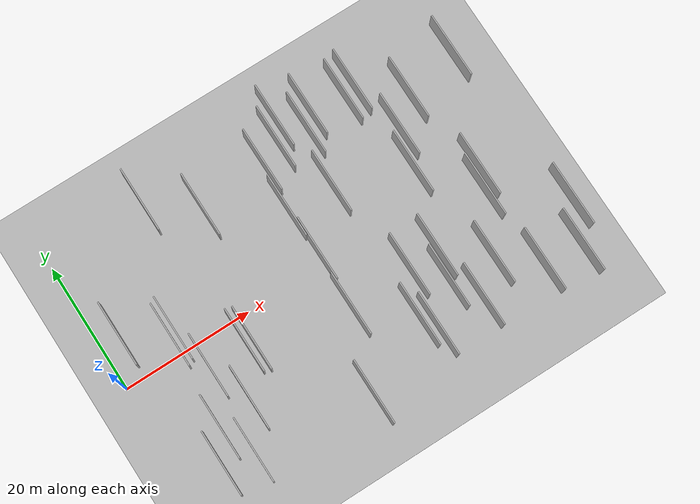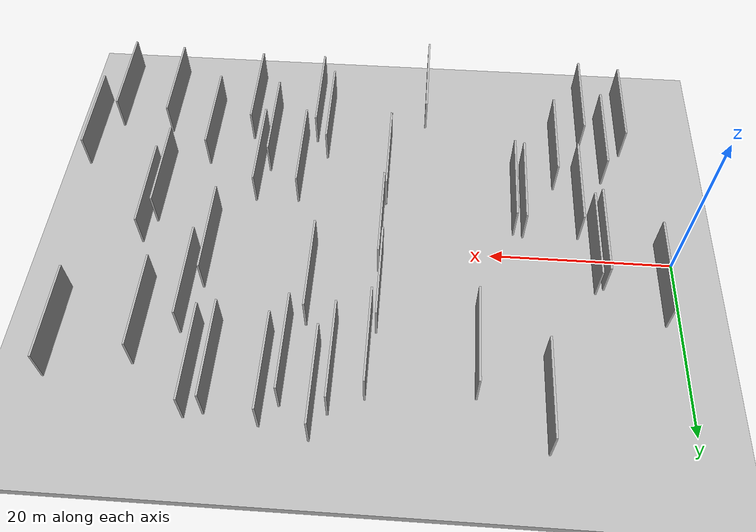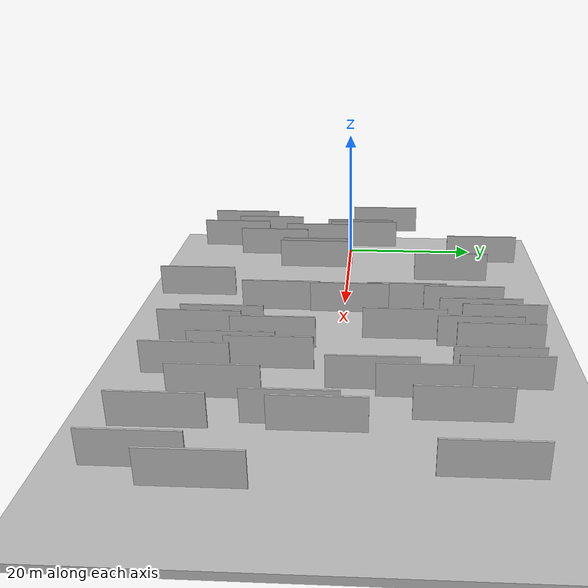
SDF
<?xml version="1.0" encoding="utf-8"?>

<sdf version="1.6">

   <world name="default">

      <gui fullscreen="0">

         <camera name="user_camera">

            <pose>-15 0 4.57585 0 0 0</pose>

            <view_controller>orbit</view_controller>

         </camera>

      </gui>

      <scene>

         <sky>

           <clouds>

             <speed>12</speed>

           </clouds>

         </sky>

         <ambient>0.4 0.4 0.4 1</ambient>

         <background>0.7 0.7 0.7 1</background>

         <shadows>1</shadows>

      </scene>

      <gravity>0 0 -9.8066</gravity>

      <magnetic_field>6e-06 2.3e-05 -4.2e-05</magnetic_field>

      <physics default="0" name="default_physics" type="ode">

         <ode>

            <solver>

               <type>quick</type>

               <iters>10</iters>

               <sor>1.0</sor>

               <use_dynamic_moi_rescaling>0</use_dynamic_moi_rescaling>

            </solver>

            <constraints>

               <cfm>0</cfm>

               <erp>0.2</erp>

               <contact_max_correcting_vel>100</contact_max_correcting_vel>

               <contact_surface_layer>0.001</contact_surface_layer>

            </constraints>

         </ode>

         <max_step_size>0.004</max_step_size>

         <real_time_factor>1</real_time_factor>

         <real_time_update_rate>250</real_time_update_rate>

      </physics>

      <light name="sun" type="directional">

         <cast_shadows>1</cast_shadows>

         <pose>0 0 10 0 0 0</pose>

         <diffuse>0.8 0.8 0.8 1</diffuse>

         <specular>0.2 0.2 0.2 1</specular>

         <attenuation>

            <range>1000</range>

            <constant>0.9</constant>

            <linear>0.01</linear>

            <quadratic>0.001</quadratic>

         </attenuation>

         <direction>-0.5 0.1 -0.9</direction>

      </light>

      <include>

         <name>ground_plane_1</name>

         <uri>model://HANNAS_ground_plane</uri>

         <pose>0 0 0  0 0 0</pose>

      </include>

      <include>

         <name>ground_plane_2</name>

         <uri>model://HANNAS_ground_plane</uri>

         <pose>100 0 0  0 0 0</pose>

      </include>

      <model name="HANNAS_wall_1">

         <static>1</static>

         <pose frame="">35.6187 17.3053 5.0 0.000000 0.000000 1.570796</pose>

         <link name="link">

            <pose frame="">0 0 2.00 0 0 0</pose>

            <collision name="collision">

               <geometry>

                  <box>

                     <size>10.00 0.2 4.00</size>

                  </box>

               </geometry>

               <max_contacts>10</max_contacts>

               <surface>

                  <contact>

                     <ode/>

                  </contact>

                  <bounce/>

                  <friction>

                     <torsional>

                        <ode/>

                     </torsional>

                     <ode/>

                  </friction>

               </surface>

            </collision>

            <visual name="visual">

               <cast_shadows>0</cast_shadows>

               <geometry>

                  <box>

                     <size>10.00 0.2 4.00</size>

                  </box>

               </geometry>

               <material>

                  <script>

                     <uri>model://HANNAS_wall/materials/scripts</uri>

                     <uri>model://HANNAS_wall/materials/textures</uri>

                     <name>vrc/HANNAS_wall</name>

                  </script>

               </material>

            </visual>

            <self_collide>0</self_collide>

            <enable_wind>0</enable_wind>

            <kinematic>0</kinematic>

         </link>

      </model>

      <model name="HANNAS_wall_2">

         <static>1</static>

         <pose frame="">38.6878 7.9935 5.0 0.000000 0.000000 1.570796</pose>

         <link name="link">

            <pose frame="">0 0 2.00 0 0 0</pose>

            <collision name="collision">

               <geometry>

                  <box>

                     <size>10.00 0.2 4.00</size>

                  </box>

               </geometry>

               <max_contacts>10</max_contacts>

               <surface>

                  <contact>

                     <ode/>

                  </contact>

                  <bounce/>

                  <friction>

                     <torsional>

                        <ode/>

                     </torsional>

                     <ode/>

                  </friction>

               </surface>

            </collision>

            <visual name="visual">

               <cast_shadows>0</cast_shadows>

               <geometry>

                  <box>

                     <size>10.00 0.2 4.00</size>

                  </box>

               </geometry>

               <material>

                  <script>

                     <uri>model://HANNAS_wall/materials/scripts</uri>

                     <uri>model://HANNAS_wall/materials/textures</uri>

                     <name>vrc/HANNAS_wall</name>

                  </script>

               </material>

            </visual>

            <self_collide>0</self_collide>

            <enable_wind>0</enable_wind>

            <kinematic>0</kinematic>

         </link>

      </model>

      <model name="HANNAS_wall_3">

         <static>1</static>

         <pose frame="">48.8552 18.4777 5.0 0.000000 0.000000 1.570796</pose>

         <link name="link">

            <pose frame="">0 0 2.00 0 0 0</pose>

            <collision name="collision">

               <geometry>

                  <box>

                     <size>10.00 0.2 4.00</size>

                  </box>

               </geometry>

               <max_contacts>10</max_contacts>

               <surface>

                  <contact>

                     <ode/>

                  </contact>

                  <bounce/>

                  <friction>

                     <torsional>

                        <ode/>

                     </torsional>

                     <ode/>

                  </friction>

               </surface>

            </collision>

            <visual name="visual">

               <cast_shadows>0</cast_shadows>

               <geometry>

                  <box>

                     <size>10.00 0.2 4.00</size>

                  </box>

               </geometry>

               <material>

                  <script>

                     <uri>model://HANNAS_wall/materials/scripts</uri>

                     <uri>model://HANNAS_wall/materials/textures</uri>

                     <name>vrc/HANNAS_wall</name>

                  </script>

               </material>

            </visual>

            <self_collide>0</self_collide>

            <enable_wind>0</enable_wind>

            <kinematic>0</kinematic>

         </link>

      </model>

      <model name="HANNAS_wall_4">

         <static>1</static>

         <pose frame="">50.8744 9.6806 5.0 0.000000 0.000000 1.570796</pose>

         <link name="link">

            <pose frame="">0 0 2.00 0 0 0</pose>

            <collision name="collision">

               <geometry>

                  <box>

                     <size>10.00 0.2 4.00</size>

                  </box>

               </geometry>

               <max_contacts>10</max_contacts>

               <surface>

                  <contact>

                     <ode/>

                  </contact>

                  <bounce/>

                  <friction>

                     <torsional>

                        <ode/>

                     </torsional>

                     <ode/>

                  </friction>

               </surface>

            </collision>

            <visual name="visual">

               <cast_shadows>0</cast_shadows>

               <geometry>

                  <box>

                     <size>10.00 0.2 4.00</size>

                  </box>

               </geometry>

               <material>

                  <script>

                     <uri>model://HANNAS_wall/materials/scripts</uri>

                     <uri>model://HANNAS_wall/materials/textures</uri>

                     <name>vrc/HANNAS_wall</name>

                  </script>

               </material>

            </visual>

            <self_collide>0</self_collide>

            <enable_wind>0</enable_wind>

            <kinematic>0</kinematic>

         </link>

      </model>

      <model name="HANNAS_wall_5">

         <static>1</static>

         <pose frame="">21.9102 14.8072 5.0 0.000000 0.000000 1.570796</pose>

         <link name="link">

            <pose frame="">0 0 2.00 0 0 0</pose>

            <collision name="collision">

               <geometry>

                  <box>

                     <size>10.00 0.2 4.00</size>

                  </box>

               </geometry>

               <max_contacts>10</max_contacts>

               <surface>

                  <contact>

                     <ode/>

                  </contact>

                  <bounce/>

                  <friction>

                     <torsional>

                        <ode/>

                     </torsional>

                     <ode/>

                  </friction>

               </surface>

            </collision>

            <visual name="visual">

               <cast_shadows>0</cast_shadows>

               <geometry>

                  <box>

                     <size>10.00 0.2 4.00</size>

                  </box>

               </geometry>

               <material>

                  <script>

                     <uri>model://HANNAS_wall/materials/scripts</uri>

                     <uri>model://HANNAS_wall/materials/textures</uri>

                     <name>vrc/HANNAS_wall</name>

                  </script>

               </material>

            </visual>

            <self_collide>0</self_collide>

            <enable_wind>0</enable_wind>

            <kinematic>0</kinematic>

         </link>

      </model>

      <model name="HANNAS_wall_6">

         <static>1</static>

         <pose frame="">11.2211 -4.3443 5.0 0.000000 0.000000 1.570796</pose>

         <link name="link">

            <pose frame="">0 0 2.00 0 0 0</pose>

            <collision name="collision">

               <geometry>

                  <box>

                     <size>10.00 0.2 4.00</size>

                  </box>

               </geometry>

               <max_contacts>10</max_contacts>

               <surface>

                  <contact>

                     <ode/>

                  </contact>

                  <bounce/>

                  <friction>

                     <torsional>

                        <ode/>

                     </torsional>

                     <ode/>

                  </friction>

               </surface>

            </collision>

            <visual name="visual">

               <cast_shadows>0</cast_shadows>

               <geometry>

                  <box>

                     <size>10.00 0.2 4.00</size>

                  </box>

               </geometry>

               <material>

                  <script>

                     <uri>model://HANNAS_wall/materials/scripts</uri>

                     <uri>model://HANNAS_wall/materials/textures</uri>

                     <name>vrc/HANNAS_wall</name>

                  </script>

               </material>

            </visual>

            <self_collide>0</self_collide>

            <enable_wind>0</enable_wind>

            <kinematic>0</kinematic>

         </link>

      </model>

      <model name="HANNAS_wall_7">

         <static>1</static>

         <pose frame="">54.7584 13.3678 5.0 0.000000 0.000000 1.570796</pose>

         <link name="link">

            <pose frame="">0 0 2.00 0 0 0</pose>

            <collision name="collision">

               <geometry>

                  <box>

                     <size>10.00 0.2 4.00</size>

                  </box>

               </geometry>

               <max_contacts>10</max_contacts>

               <surface>

                  <contact>

                     <ode/>

                  </contact>

                  <bounce/>

                  <friction>

                     <torsional>

                        <ode/>

                     </torsional>

                     <ode/>

                  </friction>

               </surface>

            </collision>

            <visual name="visual">

               <cast_shadows>0</cast_shadows>

               <geometry>

                  <box>

                     <size>10.00 0.2 4.00</size>

                  </box>

               </geometry>

               <material>

                  <script>

                     <uri>model://HANNAS_wall/materials/scripts</uri>

                     <uri>model://HANNAS_wall/materials/textures</uri>

                     <name>vrc/HANNAS_wall</name>

                  </script>

               </material>

            </visual>

            <self_collide>0</self_collide>

            <enable_wind>0</enable_wind>

            <kinematic>0</kinematic>

         </link>

      </model>

      <model name="HANNAS_wall_8">

         <static>1</static>

         <pose frame="">37.0614 19.9305 5.0 0.000000 0.000000 1.570796</pose>

         <link name="link">

            <pose frame="">0 0 2.00 0 0 0</pose>

            <collision name="collision">

               <geometry>

                  <box>

                     <size>10.00 0.2 4.00</size>

                  </box>

               </geometry>

               <max_contacts>10</max_contacts>

               <surface>

                  <contact>

                     <ode/>

                  </contact>

                  <bounce/>

                  <friction>

                     <torsional>

                        <ode/>

                     </torsional>

                     <ode/>

                  </friction>

               </surface>

            </collision>

            <visual name="visual">

               <cast_shadows>0</cast_shadows>

               <geometry>

                  <box>

                     <size>10.00 0.2 4.00</size>

                  </box>

               </geometry>

               <material>

                  <script>

                     <uri>model://HANNAS_wall/materials/scripts</uri>

                     <uri>model://HANNAS_wall/materials/textures</uri>

                     <name>vrc/HANNAS_wall</name>

                  </script>

               </material>

            </visual>

            <self_collide>0</self_collide>

            <enable_wind>0</enable_wind>

            <kinematic>0</kinematic>

         </link>

      </model>

      <model name="HANNAS_wall_9">

         <static>1</static>

         <pose frame="">47.5059 -16.1841 5.0 0.000000 0.000000 1.570796</pose>

         <link name="link">

            <pose frame="">0 0 2.00 0 0 0</pose>

            <collision name="collision">

               <geometry>

                  <box>

                     <size>10.00 0.2 4.00</size>

                  </box>

               </geometry>

               <max_contacts>10</max_contacts>

               <surface>

                  <contact>

                     <ode/>

                  </contact>

                  <bounce/>

                  <friction>

                     <torsional>

                        <ode/>

                     </torsional>

                     <ode/>

                  </friction>

               </surface>

            </collision>

            <visual name="visual">

               <cast_shadows>0</cast_shadows>

               <geometry>

                  <box>

                     <size>10.00 0.2 4.00</size>

                  </box>

               </geometry>

               <material>

                  <script>

                     <uri>model://HANNAS_wall/materials/scripts</uri>

                     <uri>model://HANNAS_wall/materials/textures</uri>

                     <name>vrc/HANNAS_wall</name>

                  </script>

               </material>

            </visual>

            <self_collide>0</self_collide>

            <enable_wind>0</enable_wind>

            <kinematic>0</kinematic>

         </link>

      </model>

      <model name="HANNAS_wall_10">

         <static>1</static>

         <pose frame="">49.5563 4.3010 5.0 0.000000 0.000000 1.570796</pose>

         <link name="link">

            <pose frame="">0 0 2.00 0 0 0</pose>

            <collision name="collision">

               <geometry>

                  <box>

                     <size>10.00 0.2 4.00</size>

                  </box>

               </geometry>

               <max_contacts>10</max_contacts>

               <surface>

                  <contact>

                     <ode/>

                  </contact>

                  <bounce/>

                  <friction>

                     <torsional>

                        <ode/>

                     </torsional>

                     <ode/>

                  </friction>

               </surface>

            </collision>

            <visual name="visual">

               <cast_shadows>0</cast_shadows>

               <geometry>

                  <box>

                     <size>10.00 0.2 4.00</size>

                  </box>

               </geometry>

               <material>

                  <script>

                     <uri>model://HANNAS_wall/materials/scripts</uri>

                     <uri>model://HANNAS_wall/materials/textures</uri>

                     <name>vrc/HANNAS_wall</name>

                  </script>

               </material>

            </visual>

            <self_collide>0</self_collide>

            <enable_wind>0</enable_wind>

            <kinematic>0</kinematic>

         </link>

      </model>

      <model name="HANNAS_wall_11">

         <static>1</static>

         <pose frame="">27.9047 -19.2298 5.0 0.000000 0.000000 1.570796</pose>

         <link name="link">

            <pose frame="">0 0 2.00 0 0 0</pose>

            <collision name="collision">

               <geometry>

                  <box>

                     <size>10.00 0.2 4.00</size>

                  </box>

               </geometry>

               <max_contacts>10</max_contacts>

               <surface>

                  <contact>

                     <ode/>

                  </contact>

                  <bounce/>

                  <friction>

                     <torsional>

                        <ode/>

                     </torsional>

                     <ode/>

                  </friction>

               </surface>

            </collision>

            <visual name="visual">

               <cast_shadows>0</cast_shadows>

               <geometry>

                  <box>

                     <size>10.00 0.2 4.00</size>

                  </box>

               </geometry>

               <material>

                  <script>

                     <uri>model://HANNAS_wall/materials/scripts</uri>

                     <uri>model://HANNAS_wall/materials/textures</uri>

                     <name>vrc/HANNAS_wall</name>

                  </script>

               </material>

            </visual>

            <self_collide>0</self_collide>

            <enable_wind>0</enable_wind>

            <kinematic>0</kinematic>

         </link>

      </model>

      <model name="HANNAS_wall_12">

         <static>1</static>

         <pose frame="">65.4013 -11.1770 5.0 0.000000 0.000000 1.570796</pose>

         <link name="link">

            <pose frame="">0 0 2.00 0 0 0</pose>

            <collision name="collision">

               <geometry>

                  <box>

                     <size>10.00 0.2 4.00</size>

                  </box>

               </geometry>

               <max_contacts>10</max_contacts>

               <surface>

                  <contact>

                     <ode/>

                  </contact>

                  <bounce/>

                  <friction>

                     <torsional>

                        <ode/>

                     </torsional>

                     <ode/>

                  </friction>

               </surface>

            </collision>

            <visual name="visual">

               <cast_shadows>0</cast_shadows>

               <geometry>

                  <box>

                     <size>10.00 0.2 4.00</size>

                  </box>

               </geometry>

               <material>

                  <script>

                     <uri>model://HANNAS_wall/materials/scripts</uri>

                     <uri>model://HANNAS_wall/materials/textures</uri>

                     <name>vrc/HANNAS_wall</name>

                  </script>

               </material>

            </visual>

            <self_collide>0</self_collide>

            <enable_wind>0</enable_wind>

            <kinematic>0</kinematic>

         </link>

      </model>

      <model name="HANNAS_wall_13">

         <static>1</static>

         <pose frame="">9.0521 1.8651 5.0 0.000000 0.000000 1.570796</pose>

         <link name="link">

            <pose frame="">0 0 2.00 0 0 0</pose>

            <collision name="collision">

               <geometry>

                  <box>

                     <size>10.00 0.2 4.00</size>

                  </box>

               </geometry>

               <max_contacts>10</max_contacts>

               <surface>

                  <contact>

                     <ode/>

                  </contact>

                  <bounce/>

                  <friction>

                     <torsional>

                        <ode/>

                     </torsional>

                     <ode/>

                  </friction>

               </surface>

            </collision>

            <visual name="visual">

               <cast_shadows>0</cast_shadows>

               <geometry>

                  <box>

                     <size>10.00 0.2 4.00</size>

                  </box>

               </geometry>

               <material>

                  <script>

                     <uri>model://HANNAS_wall/materials/scripts</uri>

                     <uri>model://HANNAS_wall/materials/textures</uri>

                     <name>vrc/HANNAS_wall</name>

                  </script>

               </material>

            </visual>

            <self_collide>0</self_collide>

            <enable_wind>0</enable_wind>

            <kinematic>0</kinematic>

         </link>

      </model>

      <model name="HANNAS_wall_14">

         <static>1</static>

         <pose frame="">32.0175 1.1703 5.0 0.000000 0.000000 1.570796</pose>

         <link name="link">

            <pose frame="">0 0 2.00 0 0 0</pose>

            <collision name="collision">

               <geometry>

                  <box>

                     <size>10.00 0.2 4.00</size>

                  </box>

               </geometry>

               <max_contacts>10</max_contacts>

               <surface>

                  <contact>

                     <ode/>

                  </contact>

                  <bounce/>

                  <friction>

                     <torsional>

                        <ode/>

                     </torsional>

                     <ode/>

                  </friction>

               </surface>

            </collision>

            <visual name="visual">

               <cast_shadows>0</cast_shadows>

               <geometry>

                  <box>

                     <size>10.00 0.2 4.00</size>

                  </box>

               </geometry>

               <material>

                  <script>

                     <uri>model://HANNAS_wall/materials/scripts</uri>

                     <uri>model://HANNAS_wall/materials/textures</uri>

                     <name>vrc/HANNAS_wall</name>

                  </script>

               </material>

            </visual>

            <self_collide>0</self_collide>

            <enable_wind>0</enable_wind>

            <kinematic>0</kinematic>

         </link>

      </model>

      <model name="HANNAS_wall_15">

         <static>1</static>

         <pose frame="">62.9998 -17.1964 5.0 0.000000 0.000000 1.570796</pose>

         <link name="link">

            <pose frame="">0 0 2.00 0 0 0</pose>

            <collision name="collision">

               <geometry>

                  <box>

                     <size>10.00 0.2 4.00</size>

                  </box>

               </geometry>

               <max_contacts>10</max_contacts>

               <surface>

                  <contact>

                     <ode/>

                  </contact>

                  <bounce/>

                  <friction>

                     <torsional>

                        <ode/>

                     </torsional>

                     <ode/>

                  </friction>

               </surface>

            </collision>

            <visual name="visual">

               <cast_shadows>0</cast_shadows>

               <geometry>

                  <box>

                     <size>10.00 0.2 4.00</size>

                  </box>

               </geometry>

               <material>

                  <script>

                     <uri>model://HANNAS_wall/materials/scripts</uri>

                     <uri>model://HANNAS_wall/materials/textures</uri>

                     <name>vrc/HANNAS_wall</name>

                  </script>

               </material>

            </visual>

            <self_collide>0</self_collide>

            <enable_wind>0</enable_wind>

            <kinematic>0</kinematic>

         </link>

      </model>

      <model name="HANNAS_wall_16">

         <static>1</static>

         <pose frame="">8.1679 -12.1139 5.0 0.000000 0.000000 1.570796</pose>

         <link name="link">

            <pose frame="">0 0 2.00 0 0 0</pose>

            <collision name="collision">

               <geometry>

                  <box>

                     <size>10.00 0.2 4.00</size>

                  </box>

               </geometry>

               <max_contacts>10</max_contacts>

               <surface>

                  <contact>

                     <ode/>

                  </contact>

                  <bounce/>

                  <friction>

                     <torsional>

                        <ode/>

                     </torsional>

                     <ode/>

                  </friction>

               </surface>

            </collision>

            <visual name="visual">

               <cast_shadows>0</cast_shadows>

               <geometry>

                  <box>

                     <size>10.00 0.2 4.00</size>

                  </box>

               </geometry>

               <material>

                  <script>

                     <uri>model://HANNAS_wall/materials/scripts</uri>

                     <uri>model://HANNAS_wall/materials/textures</uri>

                     <name>vrc/HANNAS_wall</name>

                  </script>

               </material>

            </visual>

            <self_collide>0</self_collide>

            <enable_wind>0</enable_wind>

            <kinematic>0</kinematic>

         </link>

      </model>

      <model name="HANNAS_wall_17">

         <static>1</static>

         <pose frame="">45.9120 -7.1869 5.0 0.000000 0.000000 1.570796</pose>

         <link name="link">

            <pose frame="">0 0 2.00 0 0 0</pose>

            <collision name="collision">

               <geometry>

                  <box>

                     <size>10.00 0.2 4.00</size>

                  </box>

               </geometry>

               <max_contacts>10</max_contacts>

               <surface>

                  <contact>

                     <ode/>

                  </contact>

                  <bounce/>

                  <friction>

                     <torsional>

                        <ode/>

                     </torsional>

                     <ode/>

                  </friction>

               </surface>

            </collision>

            <visual name="visual">

               <cast_shadows>0</cast_shadows>

               <geometry>

                  <box>

                     <size>10.00 0.2 4.00</size>

                  </box>

               </geometry>

               <material>

                  <script>

                     <uri>model://HANNAS_wall/materials/scripts</uri>

                     <uri>model://HANNAS_wall/materials/textures</uri>

                     <name>vrc/HANNAS_wall</name>

                  </script>

               </material>

            </visual>

            <self_collide>0</self_collide>

            <enable_wind>0</enable_wind>

            <kinematic>0</kinematic>

         </link>

      </model>

      <model name="HANNAS_wall_18">

         <static>1</static>

         <pose frame="">9.9027 2.4186 5.0 0.000000 0.000000 1.570796</pose>

         <link name="link">

            <pose frame="">0 0 2.00 0 0 0</pose>

            <collision name="collision">

               <geometry>

                  <box>

                     <size>10.00 0.2 4.00</size>

                  </box>

               </geometry>

               <max_contacts>10</max_contacts>

               <surface>

                  <contact>

                     <ode/>

                  </contact>

                  <bounce/>

                  <friction>

                     <torsional>

                        <ode/>

                     </torsional>

                     <ode/>

                  </friction>

               </surface>

            </collision>

            <visual name="visual">

               <cast_shadows>0</cast_shadows>

               <geometry>

                  <box>

                     <size>10.00 0.2 4.00</size>

                  </box>

               </geometry>

               <material>

                  <script>

                     <uri>model://HANNAS_wall/materials/scripts</uri>

                     <uri>model://HANNAS_wall/materials/textures</uri>

                     <name>vrc/HANNAS_wall</name>

                  </script>

               </material>

            </visual>

            <self_collide>0</self_collide>

            <enable_wind>0</enable_wind>

            <kinematic>0</kinematic>

         </link>

      </model>

      <model name="HANNAS_wall_19">

         <static>1</static>

         <pose frame="">31.7313 8.4021 5.0 0.000000 0.000000 1.570796</pose>

         <link name="link">

            <pose frame="">0 0 2.00 0 0 0</pose>

            <collision name="collision">

               <geometry>

                  <box>

                     <size>10.00 0.2 4.00</size>

                  </box>

               </geometry>

               <max_contacts>10</max_contacts>

               <surface>

                  <contact>

                     <ode/>

                  </contact>

                  <bounce/>

                  <friction>

                     <torsional>

                        <ode/>

                     </torsional>

                     <ode/>

                  </friction>

               </surface>

            </collision>

            <visual name="visual">

               <cast_shadows>0</cast_shadows>

               <geometry>

                  <box>

                     <size>10.00 0.2 4.00</size>

                  </box>

               </geometry>

               <material>

                  <script>

                     <uri>model://HANNAS_wall/materials/scripts</uri>

                     <uri>model://HANNAS_wall/materials/textures</uri>

                     <name>vrc/HANNAS_wall</name>

                  </script>

               </material>

            </visual>

            <self_collide>0</self_collide>

            <enable_wind>0</enable_wind>

            <kinematic>0</kinematic>

         </link>

      </model>

      <model name="HANNAS_wall_20">

         <static>1</static>

         <pose frame="">47.0536 17.9925 5.0 0.000000 0.000000 1.570796</pose>

         <link name="link">

            <pose frame="">0 0 2.00 0 0 0</pose>

            <collision name="collision">

               <geometry>

                  <box>

                     <size>10.00 0.2 4.00</size>

                  </box>

               </geometry>

               <max_contacts>10</max_contacts>

               <surface>

                  <contact>

                     <ode/>

                  </contact>

                  <bounce/>

                  <friction>

                     <torsional>

                        <ode/>

                     </torsional>

                     <ode/>

                  </friction>

               </surface>

            </collision>

            <visual name="visual">

               <cast_shadows>0</cast_shadows>

               <geometry>

                  <box>

                     <size>10.00 0.2 4.00</size>

                  </box>

               </geometry>

               <material>

                  <script>

                     <uri>model://HANNAS_wall/materials/scripts</uri>

                     <uri>model://HANNAS_wall/materials/textures</uri>

                     <name>vrc/HANNAS_wall</name>

                  </script>

               </material>

            </visual>

            <self_collide>0</self_collide>

            <enable_wind>0</enable_wind>

            <kinematic>0</kinematic>

         </link>

      </model>

      <model name="HANNAS_wall_21">

         <static>1</static>

         <pose frame="">40.1856 -16.2109 5.0 0.000000 0.000000 1.570796</pose>

         <link name="link">

            <pose frame="">0 0 2.00 0 0 0</pose>

            <collision name="collision">

               <geometry>

                  <box>

                     <size>10.00 0.2 4.00</size>

                  </box>

               </geometry>

               <max_contacts>10</max_contacts>

               <surface>

                  <contact>

                     <ode/>

                  </contact>

                  <bounce/>

                  <friction>

                     <torsional>

                        <ode/>

                     </torsional>

                     <ode/>

                  </friction>

               </surface>

            </collision>

            <visual name="visual">

               <cast_shadows>0</cast_shadows>

               <geometry>

                  <box>

                     <size>10.00 0.2 4.00</size>

                  </box>

               </geometry>

               <material>

                  <script>

                     <uri>model://HANNAS_wall/materials/scripts</uri>

                     <uri>model://HANNAS_wall/materials/textures</uri>

                     <name>vrc/HANNAS_wall</name>

                  </script>

               </material>

            </visual>

            <self_collide>0</self_collide>

            <enable_wind>0</enable_wind>

            <kinematic>0</kinematic>

         </link>

      </model>

      <model name="HANNAS_wall_22">

         <static>1</static>

         <pose frame="">31.7617 -7.6001 5.0 0.000000 0.000000 1.570796</pose>

         <link name="link">

            <pose frame="">0 0 2.00 0 0 0</pose>

            <collision name="collision">

               <geometry>

                  <box>

                     <size>10.00 0.2 4.00</size>

                  </box>

               </geometry>

               <max_contacts>10</max_contacts>

               <surface>

                  <contact>

                     <ode/>

                  </contact>

                  <bounce/>

                  <friction>

                     <torsional>

                        <ode/>

                     </torsional>

                     <ode/>

                  </friction>

               </surface>

            </collision>

            <visual name="visual">

               <cast_shadows>0</cast_shadows>

               <geometry>

                  <box>

                     <size>10.00 0.2 4.00</size>

                  </box>

               </geometry>

               <material>

                  <script>

                     <uri>model://HANNAS_wall/materials/scripts</uri>

                     <uri>model://HANNAS_wall/materials/textures</uri>

                     <name>vrc/HANNAS_wall</name>

                  </script>

               </material>

            </visual>

            <self_collide>0</self_collide>

            <enable_wind>0</enable_wind>

            <kinematic>0</kinematic>

         </link>

      </model>

      <model name="HANNAS_wall_23">

         <static>1</static>

         <pose frame="">51.8885 -12.1097 5.0 0.000000 0.000000 1.570796</pose>

         <link name="link">

            <pose frame="">0 0 2.00 0 0 0</pose>

            <collision name="collision">

               <geometry>

                  <box>

                     <size>10.00 0.2 4.00</size>

                  </box>

               </geometry>

               <max_contacts>10</max_contacts>

               <surface>

                  <contact>

                     <ode/>

                  </contact>

                  <bounce/>

                  <friction>

                     <torsional>

                        <ode/>

                     </torsional>

                     <ode/>

                  </friction>

               </surface>

            </collision>

            <visual name="visual">

               <cast_shadows>0</cast_shadows>

               <geometry>

                  <box>

                     <size>10.00 0.2 4.00</size>

                  </box>

               </geometry>

               <material>

                  <script>

                     <uri>model://HANNAS_wall/materials/scripts</uri>

                     <uri>model://HANNAS_wall/materials/textures</uri>

                     <name>vrc/HANNAS_wall</name>

                  </script>

               </material>

            </visual>

            <self_collide>0</self_collide>

            <enable_wind>0</enable_wind>

            <kinematic>0</kinematic>

         </link>

      </model>

      <model name="HANNAS_wall_24">

         <static>1</static>

         <pose frame="">13.5260 -10.9125 5.0 0.000000 0.000000 1.570796</pose>

         <link name="link">

            <pose frame="">0 0 2.00 0 0 0</pose>

            <collision name="collision">

               <geometry>

                  <box>

                     <size>10.00 0.2 4.00</size>

                  </box>

               </geometry>

               <max_contacts>10</max_contacts>

               <surface>

                  <contact>

                     <ode/>

                  </contact>

                  <bounce/>

                  <friction>

                     <torsional>

                        <ode/>

                     </torsional>

                     <ode/>

                  </friction>

               </surface>

            </collision>

            <visual name="visual">

               <cast_shadows>0</cast_shadows>

               <geometry>

                  <box>

                     <size>10.00 0.2 4.00</size>

                  </box>

               </geometry>

               <material>

                  <script>

                     <uri>model://HANNAS_wall/materials/scripts</uri>

                     <uri>model://HANNAS_wall/materials/textures</uri>

                     <name>vrc/HANNAS_wall</name>

                  </script>

               </material>

            </visual>

            <self_collide>0</self_collide>

            <enable_wind>0</enable_wind>

            <kinematic>0</kinematic>

         </link>

      </model>

      <model name="HANNAS_wall_25">

         <static>1</static>

         <pose frame="">17.0636 -4.1122 5.0 0.000000 0.000000 1.570796</pose>

         <link name="link">

            <pose frame="">0 0 2.00 0 0 0</pose>

            <collision name="collision">

               <geometry>

                  <box>

                     <size>10.00 0.2 4.00</size>

                  </box>

               </geometry>

               <max_contacts>10</max_contacts>

               <surface>

                  <contact>

                     <ode/>

                  </contact>

                  <bounce/>

                  <friction>

                     <torsional>

                        <ode/>

                     </torsional>

                     <ode/>

                  </friction>

               </surface>

            </collision>

            <visual name="visual">

               <cast_shadows>0</cast_shadows>

               <geometry>

                  <box>

                     <size>10.00 0.2 4.00</size>

                  </box>

               </geometry>

               <material>

                  <script>

                     <uri>model://HANNAS_wall/materials/scripts</uri>

                     <uri>model://HANNAS_wall/materials/textures</uri>

                     <name>vrc/HANNAS_wall</name>

                  </script>

               </material>

            </visual>

            <self_collide>0</self_collide>

            <enable_wind>0</enable_wind>

            <kinematic>0</kinematic>

         </link>

      </model>

      <model name="HANNAS_wall_26">

         <static>1</static>

         <pose frame="">3.2221 5.7646 5.0 0.000000 0.000000 1.570796</pose>

         <link name="link">

            <pose frame="">0 0 2.00 0 0 0</pose>

            <collision name="collision">

               <geometry>

                  <box>

                     <size>10.00 0.2 4.00</size>

                  </box>

               </geometry>

               <max_contacts>10</max_contacts>

               <surface>

                  <contact>

                     <ode/>

                  </contact>

                  <bounce/>

                  <friction>

                     <torsional>

                        <ode/>

                     </torsional>

                     <ode/>

                  </friction>

               </surface>

            </collision>

            <visual name="visual">

               <cast_shadows>0</cast_shadows>

               <geometry>

                  <box>

                     <size>10.00 0.2 4.00</size>

                  </box>

               </geometry>

               <material>

                  <script>

                     <uri>model://HANNAS_wall/materials/scripts</uri>

                     <uri>model://HANNAS_wall/materials/textures</uri>

                     <name>vrc/HANNAS_wall</name>

                  </script>

               </material>

            </visual>

            <self_collide>0</self_collide>

            <enable_wind>0</enable_wind>

            <kinematic>0</kinematic>

         </link>

      </model>

      <model name="HANNAS_wall_27">

         <static>1</static>

         <pose frame="">40.1759 16.7730 5.0 0.000000 0.000000 1.570796</pose>

         <link name="link">

            <pose frame="">0 0 2.00 0 0 0</pose>

            <collision name="collision">

               <geometry>

                  <box>

                     <size>10.00 0.2 4.00</size>

                  </box>

               </geometry>

               <max_contacts>10</max_contacts>

               <surface>

                  <contact>

                     <ode/>

                  </contact>

                  <bounce/>

                  <friction>

                     <torsional>

                        <ode/>

                     </torsional>

                     <ode/>

                  </friction>

               </surface>

            </collision>

            <visual name="visual">

               <cast_shadows>0</cast_shadows>

               <geometry>

                  <box>

                     <size>10.00 0.2 4.00</size>

                  </box>

               </geometry>

               <material>

                  <script>

                     <uri>model://HANNAS_wall/materials/scripts</uri>

                     <uri>model://HANNAS_wall/materials/textures</uri>

                     <name>vrc/HANNAS_wall</name>

                  </script>

               </material>

            </visual>

            <self_collide>0</self_collide>

            <enable_wind>0</enable_wind>

            <kinematic>0</kinematic>

         </link>

      </model>

      <model name="HANNAS_wall_28">

         <static>1</static>

         <pose frame="">38.7814 -13.7784 5.0 0.000000 0.000000 1.570796</pose>

         <link name="link">

            <pose frame="">0 0 2.00 0 0 0</pose>

            <collision name="collision">

               <geometry>

                  <box>

                     <size>10.00 0.2 4.00</size>

                  </box>

               </geometry>

               <max_contacts>10</max_contacts>

               <surface>

                  <contact>

                     <ode/>

                  </contact>

                  <bounce/>

                  <friction>

                     <torsional>

                        <ode/>

                     </torsional>

                     <ode/>

                  </friction>

               </surface>

            </collision>

            <visual name="visual">

               <cast_shadows>0</cast_shadows>

               <geometry>

                  <box>

                     <size>10.00 0.2 4.00</size>

                  </box>

               </geometry>

               <material>

                  <script>

                     <uri>model://HANNAS_wall/materials/scripts</uri>

                     <uri>model://HANNAS_wall/materials/textures</uri>

                     <name>vrc/HANNAS_wall</name>

                  </script>

               </material>

            </visual>

            <self_collide>0</self_collide>

            <enable_wind>0</enable_wind>

            <kinematic>0</kinematic>

         </link>

      </model>

      <model name="HANNAS_wall_29">

         <static>1</static>

         <pose frame="">15.3241 19.7978 5.0 0.000000 0.000000 1.570796</pose>

         <link name="link">

            <pose frame="">0 0 2.00 0 0 0</pose>

            <collision name="collision">

               <geometry>

                  <box>

                     <size>10.00 0.2 4.00</size>

                  </box>

               </geometry>

               <max_contacts>10</max_contacts>

               <surface>

                  <contact>

                     <ode/>

                  </contact>

                  <bounce/>

                  <friction>

                     <torsional>

                        <ode/>

                     </torsional>

                     <ode/>

                  </friction>

               </surface>

            </collision>

            <visual name="visual">

               <cast_shadows>0</cast_shadows>

               <geometry>

                  <box>

                     <size>10.00 0.2 4.00</size>

                  </box>

               </geometry>

               <material>

                  <script>

                     <uri>model://HANNAS_wall/materials/scripts</uri>

                     <uri>model://HANNAS_wall/materials/textures</uri>

                     <name>vrc/HANNAS_wall</name>

                  </script>

               </material>

            </visual>

            <self_collide>0</self_collide>

            <enable_wind>0</enable_wind>

            <kinematic>0</kinematic>

         </link>

      </model>

      <model name="HANNAS_wall_30">

         <static>1</static>

         <pose frame="">56.0486 -3.6493 5.0 0.000000 0.000000 1.570796</pose>

         <link name="link">

            <pose frame="">0 0 2.00 0 0 0</pose>

            <collision name="collision">

               <geometry>

                  <box>

                     <size>10.00 0.2 4.00</size>

                  </box>

               </geometry>

               <max_contacts>10</max_contacts>

               <surface>

                  <contact>

                     <ode/>

                  </contact>

                  <bounce/>

                  <friction>

                     <torsional>

                        <ode/>

                     </torsional>

                     <ode/>

                  </friction>

               </surface>

            </collision>

            <visual name="visual">

               <cast_shadows>0</cast_shadows>

               <geometry>

                  <box>

                     <size>10.00 0.2 4.00</size>

                  </box>

               </geometry>

               <material>

                  <script>

                     <uri>model://HANNAS_wall/materials/scripts</uri>

                     <uri>model://HANNAS_wall/materials/textures</uri>

                     <name>vrc/HANNAS_wall</name>

                  </script>

               </material>

            </visual>

            <self_collide>0</self_collide>

            <enable_wind>0</enable_wind>

            <kinematic>0</kinematic>

         </link>

      </model>

      <model name="HANNAS_wall_31">

         <static>1</static>

         <pose frame="">18.0532 -4.3979 5.0 0.000000 0.000000 1.570796</pose>

         <link name="link">

            <pose frame="">0 0 2.00 0 0 0</pose>

            <collision name="collision">

               <geometry>

                  <box>

                     <size>10.00 0.2 4.00</size>

                  </box>

               </geometry>

               <max_contacts>10</max_contacts>

               <surface>

                  <contact>

                     <ode/>

                  </contact>

                  <bounce/>

                  <friction>

                     <torsional>

                        <ode/>

                     </torsional>

                     <ode/>

                  </friction>

               </surface>

            </collision>

            <visual name="visual">

               <cast_shadows>0</cast_shadows>

               <geometry>

                  <box>

                     <size>10.00 0.2 4.00</size>

                  </box>

               </geometry>

               <material>

                  <script>

                     <uri>model://HANNAS_wall/materials/scripts</uri>

                     <uri>model://HANNAS_wall/materials/textures</uri>

                     <name>vrc/HANNAS_wall</name>

                  </script>

               </material>

            </visual>

            <self_collide>0</self_collide>

            <enable_wind>0</enable_wind>

            <kinematic>0</kinematic>

         </link>

      </model>

      <model name="HANNAS_wall_32">

         <static>1</static>

         <pose frame="">57.1175 -16.5846 5.0 0.000000 0.000000 1.570796</pose>

         <link name="link">

            <pose frame="">0 0 2.00 0 0 0</pose>

            <collision name="collision">

               <geometry>

                  <box>

                     <size>10.00 0.2 4.00</size>

                  </box>

               </geometry>

               <max_contacts>10</max_contacts>

               <surface>

                  <contact>

                     <ode/>

                  </contact>

                  <bounce/>

                  <friction>

                     <torsional>

                        <ode/>

                     </torsional>

                     <ode/>

                  </friction>

               </surface>

            </collision>

            <visual name="visual">

               <cast_shadows>0</cast_shadows>

               <geometry>

                  <box>

                     <size>10.00 0.2 4.00</size>

                  </box>

               </geometry>

               <material>

                  <script>

                     <uri>model://HANNAS_wall/materials/scripts</uri>

                     <uri>model://HANNAS_wall/materials/textures</uri>

                     <name>vrc/HANNAS_wall</name>

                  </script>

               </material>

            </visual>

            <self_collide>0</self_collide>

            <enable_wind>0</enable_wind>

            <kinematic>0</kinematic>

         </link>

      </model>

      <model name="HANNAS_wall_33">

         <static>1</static>

         <pose frame="">62.9964 15.1779 5.0 0.000000 0.000000 1.570796</pose>

         <link name="link">

            <pose frame="">0 0 2.00 0 0 0</pose>

            <collision name="collision">

               <geometry>

                  <box>

                     <size>10.00 0.2 4.00</size>

                  </box>

               </geometry>

               <max_contacts>10</max_contacts>

               <surface>

                  <contact>

                     <ode/>

                  </contact>

                  <bounce/>

                  <friction>

                     <torsional>

                        <ode/>

                     </torsional>

                     <ode/>

                  </friction>

               </surface>

            </collision>

            <visual name="visual">

               <cast_shadows>0</cast_shadows>

               <geometry>

                  <box>

                     <size>10.00 0.2 4.00</size>

                  </box>

               </geometry>

               <material>

                  <script>

                     <uri>model://HANNAS_wall/materials/scripts</uri>

                     <uri>model://HANNAS_wall/materials/textures</uri>

                     <name>vrc/HANNAS_wall</name>

                  </script>

               </material>

            </visual>

            <self_collide>0</self_collide>

            <enable_wind>0</enable_wind>

            <kinematic>0</kinematic>

         </link>

      </model>

      <model name="HANNAS_wall_34">

         <static>1</static>

         <pose frame="">10.3284 -17.0963 5.0 0.000000 0.000000 1.570796</pose>

         <link name="link">

            <pose frame="">0 0 2.00 0 0 0</pose>

            <collision name="collision">

               <geometry>

                  <box>

                     <size>10.00 0.2 4.00</size>

                  </box>

               </geometry>

               <max_contacts>10</max_contacts>

               <surface>

                  <contact>

                     <ode/>

                  </contact>

                  <bounce/>

                  <friction>

                     <torsional>

                        <ode/>

                     </torsional>

                     <ode/>

                  </friction>

               </surface>

            </collision>

            <visual name="visual">

               <cast_shadows>0</cast_shadows>

               <geometry>

                  <box>

                     <size>10.00 0.2 4.00</size>

                  </box>

               </geometry>

               <material>

                  <script>

                     <uri>model://HANNAS_wall/materials/scripts</uri>

                     <uri>model://HANNAS_wall/materials/textures</uri>

                     <name>vrc/HANNAS_wall</name>

                  </script>

               </material>

            </visual>

            <self_collide>0</self_collide>

            <enable_wind>0</enable_wind>

            <kinematic>0</kinematic>

         </link>

      </model>

      <model name="HANNAS_wall_35">

         <static>1</static>

         <pose frame="">32.3234 15.5613 5.0 0.000000 0.000000 1.570796</pose>

         <link name="link">

            <pose frame="">0 0 2.00 0 0 0</pose>

            <collision name="collision">

               <geometry>

                  <box>

                     <size>10.00 0.2 4.00</size>

                  </box>

               </geometry>

               <max_contacts>10</max_contacts>

               <surface>

                  <contact>

                     <ode/>

                  </contact>

                  <bounce/>

                  <friction>

                     <torsional>

                        <ode/>

                     </torsional>

                     <ode/>

                  </friction>

               </surface>

            </collision>

            <visual name="visual">

               <cast_shadows>0</cast_shadows>

               <geometry>

                  <box>

                     <size>10.00 0.2 4.00</size>

                  </box>

               </geometry>

               <material>

                  <script>

                     <uri>model://HANNAS_wall/materials/scripts</uri>

                     <uri>model://HANNAS_wall/materials/textures</uri>

                     <name>vrc/HANNAS_wall</name>

                  </script>

               </material>

            </visual>

            <self_collide>0</self_collide>

            <enable_wind>0</enable_wind>

            <kinematic>0</kinematic>

         </link>

      </model>

      <model name="HANNAS_wall_36">

         <static>1</static>

         <pose frame="">41.8008 18.8823 5.0 0.000000 0.000000 1.570796</pose>

         <link name="link">

            <pose frame="">0 0 2.00 0 0 0</pose>

            <collision name="collision">

               <geometry>

                  <box>

                     <size>10.00 0.2 4.00</size>

                  </box>

               </geometry>

               <max_contacts>10</max_contacts>

               <surface>

                  <contact>

                     <ode/>

                  </contact>

                  <bounce/>

                  <friction>

                     <torsional>

                        <ode/>

                     </torsional>

                     <ode/>

                  </friction>

               </surface>

            </collision>

            <visual name="visual">

               <cast_shadows>0</cast_shadows>

               <geometry>

                  <box>

                     <size>10.00 0.2 4.00</size>

                  </box>

               </geometry>

               <material>

                  <script>

                     <uri>model://HANNAS_wall/materials/scripts</uri>

                     <uri>model://HANNAS_wall/materials/textures</uri>

                     <name>vrc/HANNAS_wall</name>

                  </script>

               </material>

            </visual>

            <self_collide>0</self_collide>

            <enable_wind>0</enable_wind>

            <kinematic>0</kinematic>

         </link>

      </model>

      <model name="HANNAS_wall_37">

         <static>1</static>

         <pose frame="">41.3175 -7.3774 5.0 0.000000 0.000000 1.570796</pose>

         <link name="link">

            <pose frame="">0 0 2.00 0 0 0</pose>

            <collision name="collision">

               <geometry>

                  <box>

                     <size>10.00 0.2 4.00</size>

                  </box>

               </geometry>

               <max_contacts>10</max_contacts>

               <surface>

                  <contact>

                     <ode/>

                  </contact>

                  <bounce/>

                  <friction>

                     <torsional>

                        <ode/>

                     </torsional>

                     <ode/>

                  </friction>

               </surface>

            </collision>

            <visual name="visual">

               <cast_shadows>0</cast_shadows>

               <geometry>

                  <box>

                     <size>10.00 0.2 4.00</size>

                  </box>

               </geometry>

               <material>

                  <script>

                     <uri>model://HANNAS_wall/materials/scripts</uri>

                     <uri>model://HANNAS_wall/materials/textures</uri>

                     <name>vrc/HANNAS_wall</name>

                  </script>

               </material>

            </visual>

            <self_collide>0</self_collide>

            <enable_wind>0</enable_wind>

            <kinematic>0</kinematic>

         </link>

      </model>

      <model name="HANNAS_wall_38">

         <static>1</static>

         <pose frame="">57.0348 -0.8932 5.0 0.000000 0.000000 1.570796</pose>

         <link name="link">

            <pose frame="">0 0 2.00 0 0 0</pose>

            <collision name="collision">

               <geometry>

                  <box>

                     <size>10.00 0.2 4.00</size>

                  </box>

               </geometry>

               <max_contacts>10</max_contacts>

               <surface>

                  <contact>

                     <ode/>

                  </contact>

                  <bounce/>

                  <friction>

                     <torsional>

                        <ode/>

                     </torsional>

                     <ode/>

                  </friction>

               </surface>

            </collision>

            <visual name="visual">

               <cast_shadows>0</cast_shadows>

               <geometry>

                  <box>

                     <size>10.00 0.2 4.00</size>

                  </box>

               </geometry>

               <material>

                  <script>

                     <uri>model://HANNAS_wall/materials/scripts</uri>

                     <uri>model://HANNAS_wall/materials/textures</uri>

                     <name>vrc/HANNAS_wall</name>

                  </script>

               </material>

            </visual>

            <self_collide>0</self_collide>

            <enable_wind>0</enable_wind>

            <kinematic>0</kinematic>

         </link>

      </model>

      <model name="HANNAS_wall_39">

         <static>1</static>

         <pose frame="">44.9674 -11.5339 5.0 0.000000 0.000000 1.570796</pose>

         <link name="link">

            <pose frame="">0 0 2.00 0 0 0</pose>

            <collision name="collision">

               <geometry>

                  <box>

                     <size>10.00 0.2 4.00</size>

                  </box>

               </geometry>

               <max_contacts>10</max_contacts>

               <surface>

                  <contact>

                     <ode/>

                  </contact>

                  <bounce/>

                  <friction>

                     <torsional>

                        <ode/>

                     </torsional>

                     <ode/>

                  </friction>

               </surface>

            </collision>

            <visual name="visual">

               <cast_shadows>0</cast_shadows>

               <geometry>

                  <box>

                     <size>10.00 0.2 4.00</size>

                  </box>

               </geometry>

               <material>

                  <script>

                     <uri>model://HANNAS_wall/materials/scripts</uri>

                     <uri>model://HANNAS_wall/materials/textures</uri>

                     <name>vrc/HANNAS_wall</name>

                  </script>

               </material>

            </visual>

            <self_collide>0</self_collide>

            <enable_wind>0</enable_wind>

            <kinematic>0</kinematic>

         </link>

      </model>

      <model name="HANNAS_wall_40">

         <static>1</static>

         <pose frame="">5.8151 -16.3366 5.0 0.000000 0.000000 1.570796</pose>

         <link name="link">

            <pose frame="">0 0 2.00 0 0 0</pose>

            <collision name="collision">

               <geometry>

                  <box>

                     <size>10.00 0.2 4.00</size>

                  </box>

               </geometry>

               <max_contacts>10</max_contacts>

               <surface>

                  <contact>

                     <ode/>

                  </contact>

                  <bounce/>

                  <friction>

                     <torsional>

                        <ode/>

                     </torsional>

                     <ode/>

                  </friction>

               </surface>

            </collision>

            <visual name="visual">

               <cast_shadows>0</cast_shadows>

               <geometry>

                  <box>

                     <size>10.00 0.2 4.00</size>

                  </box>

               </geometry>

               <material>

                  <script>

                     <uri>model://HANNAS_wall/materials/scripts</uri>

                     <uri>model://HANNAS_wall/materials/textures</uri>

                     <name>vrc/HANNAS_wall</name>

                  </script>

               </material>

            </visual>

            <self_collide>0</self_collide>

            <enable_wind>0</enable_wind>

            <kinematic>0</kinematic>

         </link>

      </model>

   </world>

</sdf>
